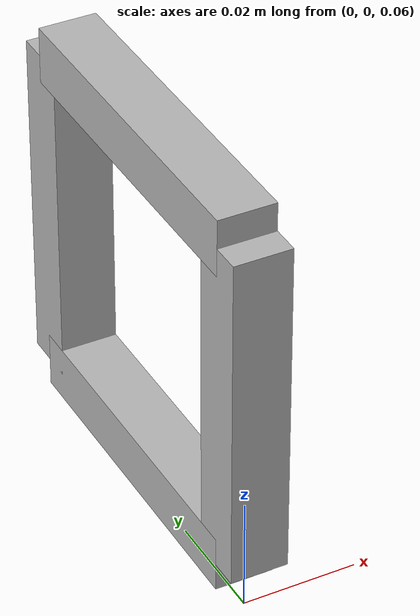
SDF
<?xml version="1.0" encoding="utf-8"?>
<sdf version="1.6">
	<model name="test3">

		<static>false</static>
		<pose>0 0 0.1 0 0 0</pose>

		<link name="base_link">
			<pose>0 0 0 0 0 0</pose>
			<inertial>
				<mass>0.000628</mass>
				<pose>0 0 0 0 0 0</pose>
				<inertia>
					<ixx>0</ixx>
					<ixy>0</ixy>
					<ixz>0</ixz>
					<iyy>0</iyy>
					<iyz>0</iyz>
					<izz>0</izz>
				</inertia>
			</inertial>
			<collision name="base_link:1_collision">
				<geometry>
					<box>
						<size>0.01 0.01 0.06</size>
					</box>
				</geometry>
			</collision>
			<visual name="base_link:1_visual">
				<geometry>
					<box>
						<size>0.01 0.01 0.06</size>
					</box>
				</geometry>
			</visual>
		</link>
		<link name="2.2_1">
			<pose>0 0.06 0.0 0 0 0</pose>
			<inertial>
				<mass>0.000628</mass>
				<pose>0 0 0 0 0 0 0</pose>
				<inertia>
					<ixx>0</ixx>
					<ixy>0</ixy>
					<ixz>0</ixz>
					<iyy>0</iyy>
					<iyz>0</iyz>
					<izz>0</izz>
				</inertia>
			</inertial>
			<collision name="2.2:1_collision">
				<geometry>
					<box>
						<size>0.01 0.01 0.06</size>
					</box>
				</geometry>
			</collision>
			<visual name="2.2:1_visual">
				<geometry>
					<box>
						<size>0.01 0.01 0.06</size>
					</box>
				</geometry>
			</visual>
		</link>
		<link name="3.1_1">
			<pose>0 0.03 -0.03 0 0 0</pose>
			<inertial>
				<mass>0.000628</mass>
				<pose>0 0 0 0 0 0</pose>
				<inertia>
					<ixx>0</ixx>
					<ixy>0</ixy>
					<ixz>0</ixz>
					<iyy>0</iyy>
					<iyz>0</iyz>
					<izz>0</izz>
				</inertia>
			</inertial>
			<collision name="3.1:1_collision">
				<geometry>
					<box>
						<size>0.01 0.06 0.01</size>
					</box>
				</geometry>
			</collision>
			<visual name="3.1:1_visual">
				<geometry>
					<box>
						<size>0.01 0.06 0.01</size>
					</box>
				</geometry>
			</visual>
		</link>
		<link name="4.1_1">
			<pose>0 0.03 0.03 0 0 0</pose>
			<inertial>
				<mass>0.000628</mass>
				<pose>0 0 0 0 0 0</pose>
				<inertia>
					<ixx>0</ixx>
					<ixy>0</ixy>
					<ixz>0</ixz>
					<iyy>0</iyy>
					<iyz>0</iyz>
					<izz>0</izz>
				</inertia>
			</inertial>
			<collision name="4.1:1_collision">
				<geometry>
					<box>
						<size>0.01 0.06 0.01</size>
					</box>
				</geometry>
			</collision>
			<visual name="4.1:1_visual">
				<geometry>
					<box>
						<size>0.01 0.06 0.01</size>
					</box>
				</geometry>
			</visual>
		</link>
		<joint name="rev0" type="revolute">
			<pose>0 0 0 0 0 0</pose>
			<child>4.1_1</child>
			<parent>base_link</parent>
			<axis>
				<xyz>-0 0 1</xyz>
			</axis>
		</joint>
		<joint name="rev1" type="revolute">
			<pose>0 0 0 0 0 0</pose>
			<child>3.1_1</child>
			<parent>4.1_1</parent>
			<axis>
				<xyz>-0 -1 0</xyz>
			</axis>
		</joint>
		<joint name="rev2" type="fixed">
			<pose>0 0 0 0 0 0</pose>
			<child>2.2_1</child>
			<parent>3.1_1</parent>

		</joint>

		<joint name="rev3" type="revolute">
		    <pose>0 0 0 0 0 0</pose>
		    <child>2.2_1</child>
		    <parent>base_link_1</parent>
		    <axis>
		        <xyz>0 1 0</xyz>
		    </axis>
		</joint>
	</model>
</sdf>
